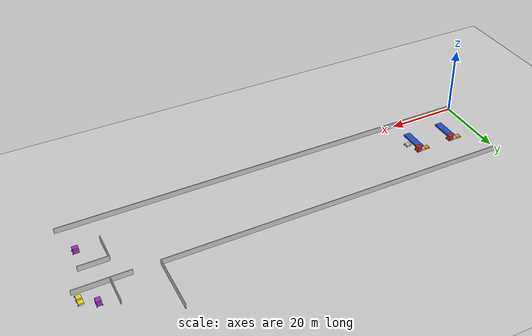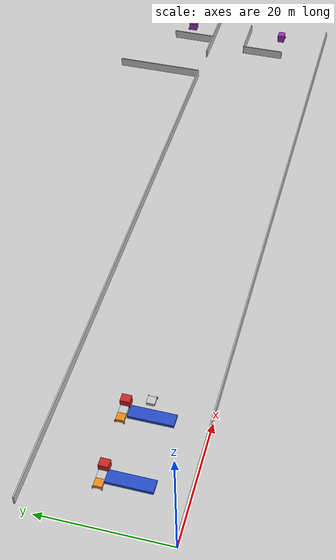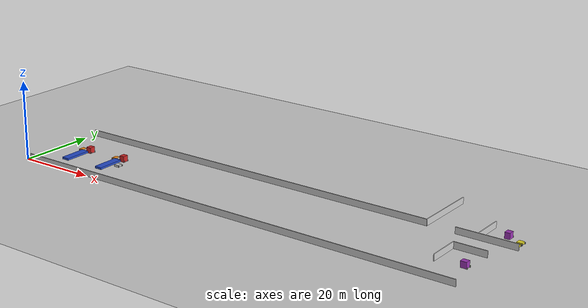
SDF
<sdf version="1.6">
 <world name="default">
  <light name="sun" type="directional">
   <pose>0 0 10 0 -0 0</pose>
   <diffuse>0.8 0.8 0.8 1</diffuse>
   <specular>0.2 0.2 0.2 1</specular>
   <attenuation>
    <range>1000</range>
    <constant>0.9</constant>
    <linear>0.01</linear>
    <quadratic>0.001</quadratic>
   </attenuation>
   <direction>-0.5 0.1 -0.9</direction>
  </light>
  <model name="ground_plane">
   <static>1</static>
   <link name="link">
    <collision name="collision">
     <geometry><plane><normal>0 0 1</normal><size>100 100</size></plane></geometry>
     <surface>
      <contact><collide_bitmask>65535</collide_bitmask></contact>
      <friction><ode><mu>100</mu><mu2>50</mu2></ode></friction>
     </surface>
    </collision>
    <visual name="visual">
     <cast_shadows>0</cast_shadows>
     <geometry><plane><normal>0 0 1</normal><size>100 100</size></plane></geometry>
     <material>
      <script><uri>file://media/materials/scripts/gazebo.material</uri><name>Gazebo/Grey</name></script>
     </material>
    </visual>
   </link>
  </model>
  <gravity>0 0 -9.8</gravity>
  <magnetic_field>6e-06 2.3e-05 -4.2e-05</magnetic_field>
  <atmosphere type="adiabatic"/>
  <physics name="default_physics" default="0" type="ode">
   <max_step_size>0.001</max_step_size>
   <real_time_factor>1</real_time_factor>
   <real_time_update_rate>1000</real_time_update_rate>
  </physics>
  <scene><ambient>0.4 0.4 0.4 1</ambient><background>0.7 0.7 0.7 1</background><shadows>1</shadows></scene>
  <audio><device>default</device></audio>
  <spherical_coordinates>
   <surface_model>EARTH_WGS84</surface_model>
   <latitude_deg>0</latitude_deg>
   <longitude_deg>0</longitude_deg>
   <elevation>0</elevation>
   <heading_deg>0</heading_deg>
  </spherical_coordinates>
  <model name="allendorf">
   <link name="fixed_link">
    <inertial>
     <pose>84.5005 19.5068 0.618478 0 -0 0</pose>
     <mass>9200</mass>
     <inertia>
      <ixx>508544</ixx>
      <ixy>-1.23047e+06</ixy>
      <ixz>-46757.7</ixz>
      <iyy>1.5754e+07</iyy>
      <iyz>-5143.33</iyz>
      <izz>1.62614e+07</izz>
     </inertia>
    </inertial>
    <collision name="fixed_link_fixed_joint_lump__bottom_wall_collision">
     <pose>60 0 0.8 0 -0 0</pose>
     <geometry><box><size>120 0.2 1.6</size></box></geometry>
    </collision>
    <collision name="fixed_link_fixed_joint_lump__el1_collision_1">
     <pose>117 28 0.5 0 -0 1.5708</pose>
     <geometry><box><size>1.5 1.3 1.5</size></box></geometry>
    </collision>
    <collision name="fixed_link_fixed_joint_lump__el1_left_reflector_collision_2">
     <pose>117.65 28.85 -0.05 0 -0 1.5708</pose>
     <geometry><cylinder><length>0.4</length><radius>0.1</radius></cylinder></geometry>
     <laser_retro>25000</laser_retro>
    </collision>
    <collision name="fixed_link_fixed_joint_lump__el1_right_reflector_collision_3">
     <pose>116.35 28.85 -0.05 0 -0 1.5708</pose>
     <geometry><cylinder><length>0.4</length><radius>0.1</radius></cylinder></geometry>
     <laser_retro>25000</laser_retro>
    </collision>
    <collision name="fixed_link_fixed_joint_lump__el2_collision_4">
     <pose>117 9 0.75 0 -0 0</pose>
     <geometry><box><size>1.5 1.3 1.5</size></box></geometry>
    </collision>
    <collision name="fixed_link_fixed_joint_lump__el2_left_reflector_collision_5">
     <pose>117.85 8.35 0.2 0 -0 0</pose>
     <geometry><cylinder><length>0.4</length><radius>0.1</radius></cylinder></geometry>
     <laser_retro>25000</laser_retro>
    </collision>
    <collision name="fixed_link_fixed_joint_lump__el2_right_reflector_collision_6">
     <pose>117.85 9.65 0.2 0 -0 0</pose>
     <geometry><cylinder><length>0.4</length><radius>0.1</radius></cylinder></geometry>
     <laser_retro>25000</laser_retro>
    </collision>
    <collision name="fixed_link_fixed_joint_lump__pallet_stack6_collision_7">
     <pose>120.65 24.4 0.25 0 -0 0</pose>
     <geometry><box><size>1.3 1.3 0.5</size></box></geometry>
    </collision>
    <collision name="fixed_link_fixed_joint_lump__pallet_stack6_left_reflector_collision_8">
     <pose>121.4 23.75 0.2 0 -0 0</pose>
     <geometry><cylinder><length>0.4</length><radius>0.1</radius></cylinder></geometry>
     <laser_retro>25000</laser_retro>
    </collision>
    <collision name="fixed_link_fixed_joint_lump__pallet_stack6_right_reflector_collision_9">
     <pose>121.4 25.05 0.2 0 -0 0</pose>
     <geometry><cylinder><length>0.4</length><radius>0.1</radius></cylinder></geometry>
     <laser_retro>25000</laser_retro>
    </collision>
    <collision name="fixed_link_fixed_joint_lump__pallet_stack5_collision_10">
     <pose>120.65 26.2 0.25 0 -0 0</pose>
     <geometry><box><size>1.3 1.3 0.5</size></box></geometry>
    </collision>
    <collision name="fixed_link_fixed_joint_lump__pallet_stack5_left_reflector_collision_11">
     <pose>121.4 25.55 0.2 0 -0 0</pose>
     <geometry><cylinder><length>0.4</length><radius>0.1</radius></cylinder></geometry>
     <laser_retro>25000</laser_retro>
    </collision>
    <collision name="fixed_link_fixed_joint_lump__pallet_stack5_right_reflector_collision_12">
     <pose>121.4 26.85 0.2 0 -0 0</pose>
     <geometry><cylinder><length>0.4</length><radius>0.1</radius></cylinder></geometry>
     <laser_retro>25000</laser_retro>
    </collision>
    <collision name="fixed_link_fixed_joint_lump__pl5_conv1_collision_13">
     <pose>5.65 12.65 0.25 0 -0 0</pose>
     <geometry><box><size>1.3 1.3 0.5</size></box></geometry>
    </collision>
    <collision name="fixed_link_fixed_joint_lump__pl5_conv1_left_reflector_collision_14">
     <pose>4.9 12 0.2 0 -0 0</pose>
     <geometry><cylinder><length>0.4</length><radius>0.1</radius></cylinder></geometry>
     <laser_retro>25000</laser_retro>
    </collision>
    <collision name="fixed_link_fixed_joint_lump__pl5_conv1_right_reflector_collision_15">
     <pose>4.9 13.3 0.2 0 -0 0</pose>
     <geometry><cylinder><length>0.4</length><radius>0.1</radius></cylinder></geometry>
     <laser_retro>25000</laser_retro>
    </collision>
    <collision name="fixed_link_fixed_joint_lump__pl5_conv2_collision_16">
     <pose>6.95 12.65 0.25 0 -0 0</pose>
     <geometry><box><size>1.3 1.3 0.5</size></box></geometry>
    </collision>
    <collision name="fixed_link_fixed_joint_lump__pl5_pacman_collision_17">
     <pose>8.25 12.65 0.75 0 -0 0</pose>
     <geometry><box><size>1.3 1.5 1.5</size></box></geometry>
    </collision>
    <collision name="fixed_link_fixed_joint_lump__pl5_pacman_left_reflector_collision_18">
     <pose>9 12 0.2 0 -0 0</pose>
     <geometry><cylinder><length>0.4</length><radius>0.1</radius></cylinder></geometry>
     <laser_retro>25000</laser_retro>
    </collision>
    <collision name="fixed_link_fixed_joint_lump__pl5_pacman_right_reflector_collision_19">
     <pose>9 13.3 0.2 0 -0 0</pose>
     <geometry><cylinder><length>0.4</length><radius>0.1</radius></cylinder></geometry>
     <laser_retro>25000</laser_retro>
    </collision>
    <collision name="fixed_link_fixed_joint_lump__pl6_conv1_collision_20">
     <pose>16.75 12.975 0.25 0 -0 0</pose>
     <geometry><box><size>1.3 1.3 0.5</size></box></geometry>
    </collision>
    <collision name="fixed_link_fixed_joint_lump__pl6_conv1_left_reflector_collision_21">
     <pose>16 12.325 0.2 0 -0 0</pose>
     <geometry><cylinder><length>0.4</length><radius>0.1</radius></cylinder></geometry>
     <laser_retro>25000</laser_retro>
    </collision>
    <collision name="fixed_link_fixed_joint_lump__pl6_conv1_right_reflector_collision_22">
     <pose>16 13.625 0.2 0 -0 0</pose>
     <geometry><cylinder><length>0.4</length><radius>0.1</radius></cylinder></geometry>
     <laser_retro>25000</laser_retro>
    </collision>
    <collision name="fixed_link_fixed_joint_lump__pl6_conv2_collision_23">
     <pose>18.05 12.975 0.25 0 -0 0</pose>
     <geometry><box><size>1.3 1.3 0.5</size></box></geometry>
    </collision>
    <collision name="fixed_link_fixed_joint_lump__pl6_pacman_collision_24">
     <pose>19.35 12.975 0.75 0 -0 0</pose>
     <geometry><box><size>1.3 1.5 1.5</size></box></geometry>
    </collision>
    <collision name="fixed_link_fixed_joint_lump__charging_station_collision_25">
     <pose>20.65 9.53 0.25 0 -0 0</pose>
     <geometry><box><size>1.3 1.3 0.5</size></box></geometry>
    </collision>
    <collision name="fixed_link_fixed_joint_lump__charging_station_left_reflector_collision_26">
     <pose>21.4 8.88 0.2 0 -0 0</pose>
     <geometry><cylinder><length>0.4</length><radius>0.1</radius></cylinder></geometry>
     <laser_retro>25000</laser_retro>
    </collision>
    <collision name="fixed_link_fixed_joint_lump__charging_station_right_reflector_collision_27">
     <pose>21.4 10.18 0.2 0 -0 0</pose>
     <geometry><cylinder><length>0.4</length><radius>0.1</radius></cylinder></geometry>
     <laser_retro>25000</laser_retro>
    </collision>
    <collision name="fixed_link_fixed_joint_lump__pl6_pacman_left_reflector_collision_28">
     <pose>20.1 12.325 0.2 0 -0 0</pose>
     <geometry><cylinder><length>0.4</length><radius>0.1</radius></cylinder></geometry>
     <laser_retro>25000</laser_retro>
    </collision>
    <collision name="fixed_link_fixed_joint_lump__pl6_pacman_right_reflector_collision_29">
     <pose>20.1 13.625 0.2 0 -0 0</pose>
     <geometry><cylinder><length>0.4</length><radius>0.1</radius></cylinder></geometry>
     <laser_retro>25000</laser_retro>
    </collision>
    <collision name="fixed_link_fixed_joint_lump__wall1_collision_30">
     <pose>50 22.75 0.8 0 -0 0</pose>
     <geometry><box><size>100 0.2 1.6</size></box></geometry>
    </collision>
    <collision name="fixed_link_fixed_joint_lump__wall2_collision_31">
     <pose>114.5 22.75 0.8 0 -0 0</pose>
     <geometry><box><size>15 0.2 1.6</size></box></geometry>
    </collision>
    <collision name="fixed_link_fixed_joint_lump__wall4_collision_32">
     <pose>114.5 15.75 0.8 0 -0 0</pose>
     <geometry><box><size>8 0.2 1.6</size></box></geometry>
    </collision>
    <collision name="fixed_link_fixed_joint_lump__wall5_collision_33">
     <pose>110.5 11.75 0.8 0 -0 1.5708</pose>
     <geometry><box><size>8 0.2 1.6</size></box></geometry>
    </collision>
    <collision name="fixed_link_fixed_joint_lump__wall6_collision_34">
     <pose>112.5 26.75 0.8 0 -0 1.5708</pose>
     <geometry><box><size>8 0.2 1.6</size></box></geometry>
    </collision>
    <collision name="fixed_link_fixed_joint_lump__wall3_collision_35">
     <pose>100 30.75 0.8 0 -0 1.5708</pose>
     <geometry><box><size>15 0.2 1.6</size></box></geometry>
    </collision>
    <collision name="fixed_link_fixed_joint_lump__pl5_collision_36">
     <pose>6.95 8.5 0.25 0 -0 0</pose>
     <geometry><box><size>2 7 0.5</size></box></geometry>
    </collision>
    <collision name="fixed_link_fixed_joint_lump__pl6_collision_37">
     <pose>18.05 8.6625 0.25 0 -0 0</pose>
     <geometry><box><size>2 7 0.5</size></box></geometry>
    </collision>
    <visual name="fixed_link_fixed_joint_lump__bottom_wall_visual_visual">
     <pose>60 0 0.8 0 -0 0</pose>
     <geometry><box><size>120 0.2 1.6</size></box></geometry>
     <material>
      <script><name>Gazebo/LightGrey</name><uri>file://media/materials/scripts/gazebo.material</uri></script>
     </material>
    </visual>
    <visual name="fixed_link_fixed_joint_lump__el1_visual_visual_1">
     <pose>117 28 0.5 0 -0 1.5708</pose>
     <geometry><box><size>1.5 1.3 1.5</size></box></geometry>
     <material>
      <script><name>Gazebo/Purple</name><uri>file://media/materials/scripts/gazebo.material</uri></script>
     </material>
    </visual>
    <visual name="fixed_link_fixed_joint_lump__el1_left_reflector_visual_visual_2">
     <pose>117.65 28.85 -0.05 0 -0 1.5708</pose>
     <geometry><cylinder><length>0.4</length><radius>0.1</radius></cylinder></geometry>
     <material>
      <script><name>Gazebo/Grey</name><uri>file://media/materials/scripts/gazebo.material</uri></script>
     </material>
    </visual>
    <visual name="fixed_link_fixed_joint_lump__el1_right_reflector_visual_visual_3">
     <pose>116.35 28.85 -0.05 0 -0 1.5708</pose>
     <geometry><cylinder><length>0.4</length><radius>0.1</radius></cylinder></geometry>
     <material>
      <script><name>Gazebo/Grey</name><uri>file://media/materials/scripts/gazebo.material</uri></script>
     </material>
    </visual>
    <visual name="fixed_link_fixed_joint_lump__el2_visual_visual_4">
     <pose>117 9 0.75 0 -0 0</pose>
     <geometry><box><size>1.5 1.3 1.5</size></box></geometry>
     <material>
      <script><name>Gazebo/Purple</name><uri>file://media/materials/scripts/gazebo.material</uri></script>
     </material>
    </visual>
    <visual name="fixed_link_fixed_joint_lump__el2_left_reflector_visual_visual_5">
     <pose>117.85 8.35 0.2 0 -0 0</pose>
     <geometry><cylinder><length>0.4</length><radius>0.1</radius></cylinder></geometry>
     <material>
      <script><name>Gazebo/Grey</name><uri>file://media/materials/scripts/gazebo.material</uri></script>
     </material>
    </visual>
    <visual name="fixed_link_fixed_joint_lump__el2_right_reflector_visual_visual_6">
     <pose>117.85 9.65 0.2 0 -0 0</pose>
     <geometry><cylinder><length>0.4</length><radius>0.1</radius></cylinder></geometry>
     <material>
      <script><name>Gazebo/Grey</name><uri>file://media/materials/scripts/gazebo.material</uri></script>
     </material>
    </visual>
    <visual name="fixed_link_fixed_joint_lump__pallet_stack6_visual_visual_7">
     <pose>120.65 24.4 0.25 0 -0 0</pose>
     <geometry><box><size>1.3 1.3 0.5</size></box></geometry>
     <material>
      <script><name>Gazebo/Yellow</name><uri>file://media/materials/scripts/gazebo.material</uri></script>
     </material>
    </visual>
    <visual name="fixed_link_fixed_joint_lump__pallet_stack6_left_reflector_visual_visual_8">
     <pose>121.4 23.75 0.2 0 -0 0</pose>
     <geometry><cylinder><length>0.4</length><radius>0.1</radius></cylinder></geometry>
     <material>
      <script><name>Gazebo/Grey</name><uri>file://media/materials/scripts/gazebo.material</uri></script>
     </material>
    </visual>
    <visual name="fixed_link_fixed_joint_lump__pallet_stack6_right_reflector_visual_visual_9">
     <pose>121.4 25.05 0.2 0 -0 0</pose>
     <geometry><cylinder><length>0.4</length><radius>0.1</radius></cylinder></geometry>
     <material>
      <script><name>Gazebo/Grey</name><uri>file://media/materials/scripts/gazebo.material</uri></script>
     </material>
    </visual>
    <visual name="fixed_link_fixed_joint_lump__pallet_stack5_visual_visual_10">
     <pose>120.65 26.2 0.25 0 -0 0</pose>
     <geometry><box><size>1.3 1.3 0.5</size></box></geometry>
     <material>
      <script><name>Gazebo/Yellow</name><uri>file://media/materials/scripts/gazebo.material</uri></script>
     </material>
    </visual>
    <visual name="fixed_link_fixed_joint_lump__pallet_stack5_left_reflector_visual_visual_11">
     <pose>121.4 25.55 0.2 0 -0 0</pose>
     <geometry><cylinder><length>0.4</length><radius>0.1</radius></cylinder></geometry>
     <material>
      <script><name>Gazebo/Grey</name><uri>file://media/materials/scripts/gazebo.material</uri></script>
     </material>
    </visual>
    <visual name="fixed_link_fixed_joint_lump__pallet_stack5_right_reflector_visual_visual_12">
     <pose>121.4 26.85 0.2 0 -0 0</pose>
     <geometry><cylinder><length>0.4</length><radius>0.1</radius></cylinder></geometry>
     <material>
      <script><name>Gazebo/Grey</name><uri>file://media/materials/scripts/gazebo.material</uri></script>
     </material>
    </visual>
    <visual name="fixed_link_fixed_joint_lump__pl5_conv1_visual_visual_13">
     <pose>5.65 12.65 0.25 0 -0 0</pose>
     <geometry><box><size>1.3 1.3 0.5</size></box></geometry>
     <material>
      <script><name>Gazebo/Orange</name><uri>file://media/materials/scripts/gazebo.material</uri></script>
     </material>
    </visual>
    <visual name="fixed_link_fixed_joint_lump__pl5_conv1_left_reflector_visual_visual_14">
     <pose>4.9 12 0.2 0 -0 0</pose>
     <geometry><cylinder><length>0.4</length><radius>0.1</radius></cylinder></geometry>
     <material>
      <script><name>Gazebo/Grey</name><uri>file://media/materials/scripts/gazebo.material</uri></script>
     </material>
    </visual>
    <visual name="fixed_link_fixed_joint_lump__pl5_conv1_right_reflector_visual_visual_15">
     <pose>4.9 13.3 0.2 0 -0 0</pose>
     <geometry><cylinder><length>0.4</length><radius>0.1</radius></cylinder></geometry>
     <material>
      <script><name>Gazebo/Grey</name><uri>file://media/materials/scripts/gazebo.material</uri></script>
     </material>
    </visual>
    <visual name="fixed_link_fixed_joint_lump__pl5_conv2_visual_visual_16">
     <pose>6.95 12.65 0.25 0 -0 0</pose>
     <geometry><box><size>1.3 1.3 0.5</size></box></geometry>
     <material>
      <script><name>Gazebo/LightGrey</name><uri>file://media/materials/scripts/gazebo.material</uri></script>
     </material>
    </visual>
    <visual name="fixed_link_fixed_joint_lump__pl5_pacman_visual_visual_17">
     <pose>8.25 12.65 0.75 0 -0 0</pose>
     <geometry><box><size>1.3 1.5 1.5</size></box></geometry>
     <material>
      <script><name>Gazebo/Red</name><uri>file://media/materials/scripts/gazebo.material</uri></script>
     </material>
    </visual>
    <visual name="fixed_link_fixed_joint_lump__pl5_pacman_left_reflector_visual_visual_18">
     <pose>9 12 0.2 0 -0 0</pose>
     <geometry><cylinder><length>0.4</length><radius>0.1</radius></cylinder></geometry>
     <material>
      <script><name>Gazebo/Grey</name><uri>file://media/materials/scripts/gazebo.material</uri></script>
     </material>
    </visual>
    <visual name="fixed_link_fixed_joint_lump__pl5_pacman_right_reflector_visual_visual_19">
     <pose>9 13.3 0.2 0 -0 0</pose>
     <geometry><cylinder><length>0.4</length><radius>0.1</radius></cylinder></geometry>
     <material>
      <script><name>Gazebo/Grey</name><uri>file://media/materials/scripts/gazebo.material</uri></script>
     </material>
    </visual>
    <visual name="fixed_link_fixed_joint_lump__pl6_conv1_visual_visual_20">
     <pose>16.75 12.975 0.25 0 -0 0</pose>
     <geometry><box><size>1.3 1.3 0.5</size></box></geometry>
     <material>
      <script><name>Gazebo/Orange</name><uri>file://media/materials/scripts/gazebo.material</uri></script>
     </material>
    </visual>
    <visual name="fixed_link_fixed_joint_lump__pl6_conv1_left_reflector_visual_visual_21">
     <pose>16 12.325 0.2 0 -0 0</pose>
     <geometry><cylinder><length>0.4</length><radius>0.1</radius></cylinder></geometry>
     <material>
      <script><name>Gazebo/Grey</name><uri>file://media/materials/scripts/gazebo.material</uri></script>
     </material>
    </visual>
    <visual name="fixed_link_fixed_joint_lump__pl6_conv1_right_reflector_visual_visual_22">
     <pose>16 13.625 0.2 0 -0 0</pose>
     <geometry><cylinder><length>0.4</length><radius>0.1</radius></cylinder></geometry>
     <material>
      <script><name>Gazebo/Grey</name><uri>file://media/materials/scripts/gazebo.material</uri></script>
     </material>
    </visual>
    <visual name="fixed_link_fixed_joint_lump__pl6_conv2_visual_visual_23">
     <pose>18.05 12.975 0.25 0 -0 0</pose>
     <geometry><box><size>1.3 1.3 0.5</size></box></geometry>
     <material>
      <script><name>Gazebo/LightGrey</name><uri>file://media/materials/scripts/gazebo.material</uri></script>
     </material>
    </visual>
    <visual name="fixed_link_fixed_joint_lump__pl6_pacman_visual_visual_24">
     <pose>19.35 12.975 0.75 0 -0 0</pose>
     <geometry><box><size>1.3 1.5 1.5</size></box></geometry>
     <material>
      <script><name>Gazebo/Red</name><uri>file://media/materials/scripts/gazebo.material</uri></script>
     </material>
    </visual>
    <visual name="fixed_link_fixed_joint_lump__charging_station_visual_visual_25">
     <pose>20.65 9.53 0.25 0 -0 0</pose>
     <geometry><box><size>1.3 1.3 0.5</size></box></geometry>
     <material>
      <script><name>Gazebo/LightGrey</name><uri>file://media/materials/scripts/gazebo.material</uri></script>
     </material>
    </visual>
    <visual name="fixed_link_fixed_joint_lump__charging_station_left_reflector_visual_visual_26">
     <pose>21.4 8.88 0.2 0 -0 0</pose>
     <geometry><cylinder><length>0.4</length><radius>0.1</radius></cylinder></geometry>
     <material>
      <script><name>Gazebo/Grey</name><uri>file://media/materials/scripts/gazebo.material</uri></script>
     </material>
    </visual>
    <visual name="fixed_link_fixed_joint_lump__charging_station_right_reflector_visual_visual_27">
     <pose>21.4 10.18 0.2 0 -0 0</pose>
     <geometry><cylinder><length>0.4</length><radius>0.1</radius></cylinder></geometry>
     <material>
      <script><name>Gazebo/Grey</name><uri>file://media/materials/scripts/gazebo.material</uri></script>
     </material>
    </visual>
    <visual name="fixed_link_fixed_joint_lump__pl6_pacman_left_reflector_visual_visual_28">
     <pose>20.1 12.325 0.2 0 -0 0</pose>
     <geometry><cylinder><length>0.4</length><radius>0.1</radius></cylinder></geometry>
     <material>
      <script><name>Gazebo/Grey</name><uri>file://media/materials/scripts/gazebo.material</uri></script>
     </material>
    </visual>
    <visual name="fixed_link_fixed_joint_lump__pl6_pacman_right_reflector_visual_visual_29">
     <pose>20.1 13.625 0.2 0 -0 0</pose>
     <geometry><cylinder><length>0.4</length><radius>0.1</radius></cylinder></geometry>
     <material>
      <script><name>Gazebo/Grey</name><uri>file://media/materials/scripts/gazebo.material</uri></script>
     </material>
    </visual>
    <visual name="fixed_link_fixed_joint_lump__wall1_visual_visual_30">
     <pose>50 22.75 0.8 0 -0 0</pose>
     <geometry><box><size>100 0.2 1.6</size></box></geometry>
     <material>
      <script><name>Gazebo/LightGrey</name><uri>file://media/materials/scripts/gazebo.material</uri></script>
     </material>
    </visual>
    <visual name="fixed_link_fixed_joint_lump__wall2_visual_visual_31">
     <pose>114.5 22.75 0.8 0 -0 0</pose>
     <geometry><box><size>15 0.2 1.6</size></box></geometry>
     <material>
      <script><name>Gazebo/LightGrey</name><uri>file://media/materials/scripts/gazebo.material</uri></script>
     </material>
    </visual>
    <visual name="fixed_link_fixed_joint_lump__wall4_visual_visual_32">
     <pose>114.5 15.75 0.8 0 -0 0</pose>
     <geometry><box><size>8 0.2 1.6</size></box></geometry>
     <material>
      <script><name>Gazebo/LightGrey</name><uri>file://media/materials/scripts/gazebo.material</uri></script>
     </material>
    </visual>
    <visual name="fixed_link_fixed_joint_lump__wall5_visual_visual_33">
     <pose>110.5 11.75 0.8 0 -0 1.5708</pose>
     <geometry><box><size>8 0.2 1.6</size></box></geometry>
     <material>
      <script><name>Gazebo/LightGrey</name><uri>file://media/materials/scripts/gazebo.material</uri></script>
     </material>
    </visual>
    <visual name="fixed_link_fixed_joint_lump__wall6_visual_visual_34">
     <pose>112.5 26.75 0.8 0 -0 1.5708</pose>
     <geometry><box><size>8 0.2 1.6</size></box></geometry>
     <material>
      <script><name>Gazebo/LightGrey</name><uri>file://media/materials/scripts/gazebo.material</uri></script>
     </material>
    </visual>
    <visual name="fixed_link_fixed_joint_lump__wall3_visual_visual_35">
     <pose>100 30.75 0.8 0 -0 1.5708</pose>
     <geometry><box><size>16 0.2 1.6</size></box></geometry>
     <material>
      <script><name>Gazebo/LightGrey</name><uri>file://media/materials/scripts/gazebo.material</uri></script>
     </material>
    </visual>
    <visual name="fixed_link_fixed_joint_lump__pl5_visual_visual_36">
     <pose>6.95 8.5 0.25 0 -0 0</pose>
     <geometry><box><size>2 7 0.5</size></box></geometry>
     <material>
      <script><name>Gazebo/Blue</name><uri>file://media/materials/scripts/gazebo.material</uri></script>
     </material>
    </visual>
    <visual name="fixed_link_fixed_joint_lump__pl6_visual_visual_37">
     <pose>18.05 8.6625 0.25 0 -0 0</pose>
     <geometry><box><size>2 7 0.5</size></box></geometry>
     <material>
      <script><name>Gazebo/Blue</name><uri>file://media/materials/scripts/gazebo.material</uri></script>
     </material>
    </visual>
   </link>
   <pose>0.812124 0.153364 0.000914 0.009141 -0 0.000115</pose>
  </model>
 </world>
</sdf>
